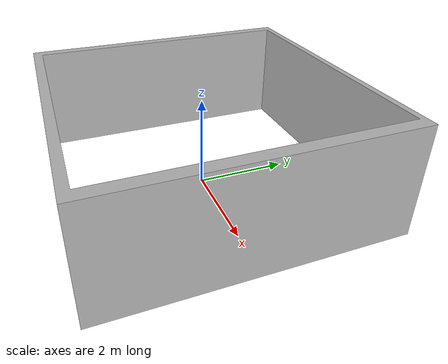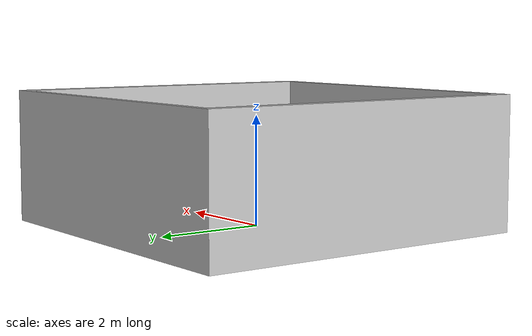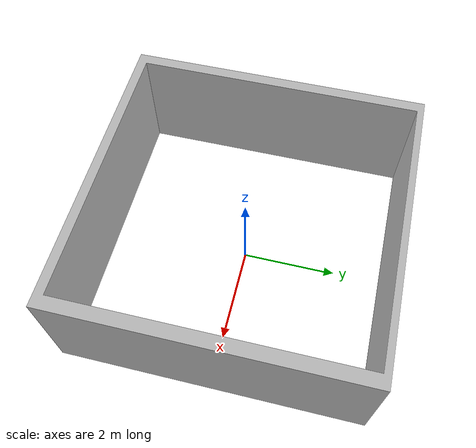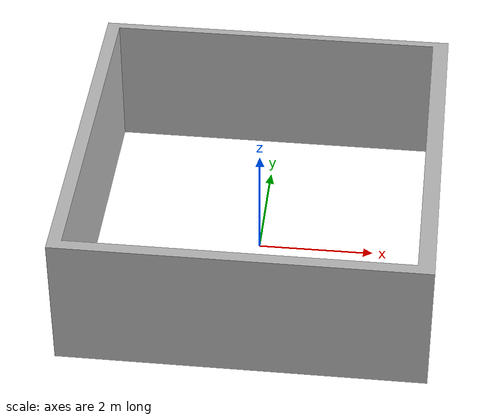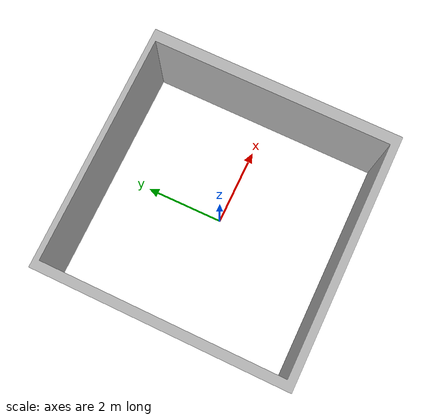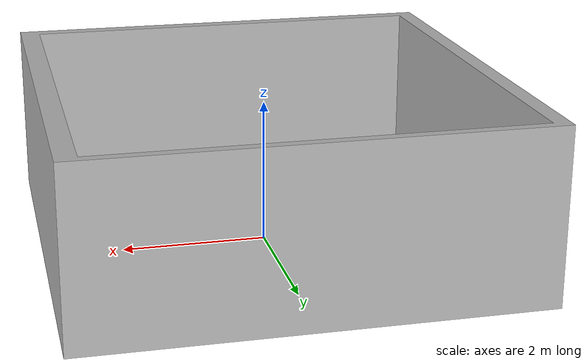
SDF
<?xml version="1.0" ?>
<sdf version="1.6">
  <model name="DigilabKRFence">
    <static>true</static>
    <link name="cell_link">
      <visual name="visual">
        <geometry>
          <mesh>
            <scale>1.2 1.2 1.2</scale>
            <uri>model://DigilabKRFence/meshes/DigilabKRFence.dae</uri>
          </mesh>
        </geometry>
      </visual>
      <collision name="collision">
        <geometry>
          <mesh>
            <scale>1.2 1.2 1.2</scale>
            <uri>model://DigilabKRFence/meshes/DigilabKRFence.stl</uri>
          </mesh>
        </geometry>
      </collision>
    </link>
  </model>
</sdf>
